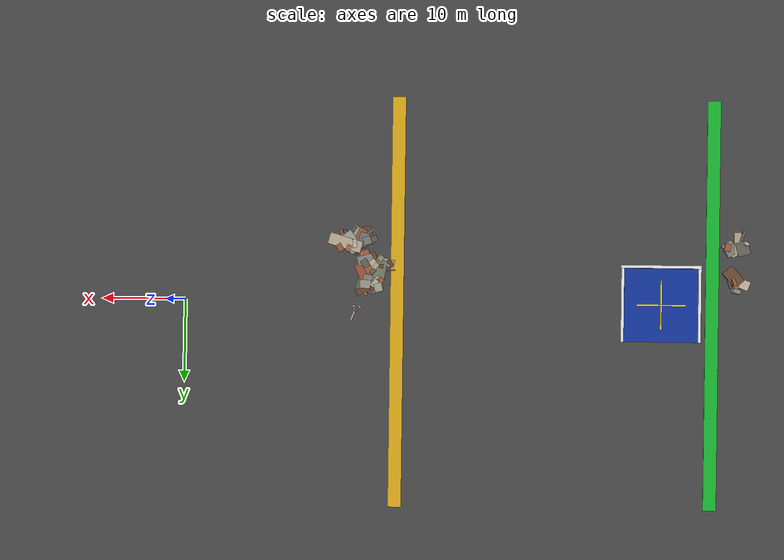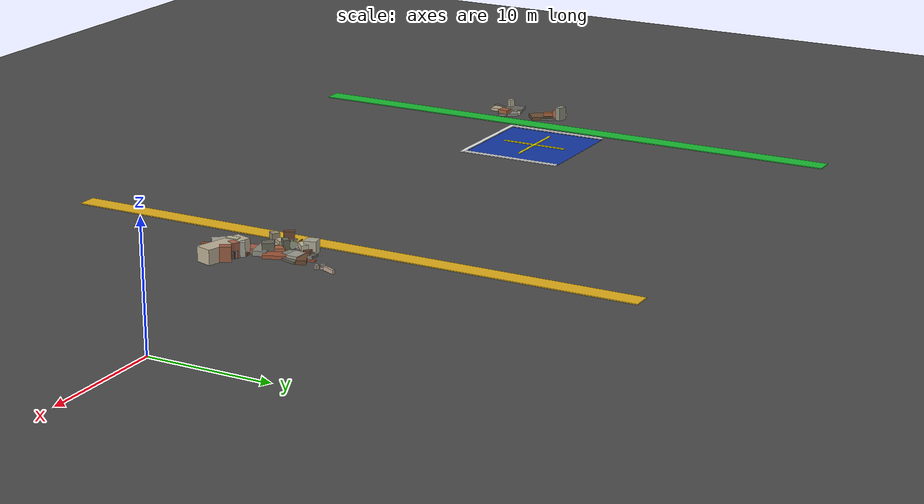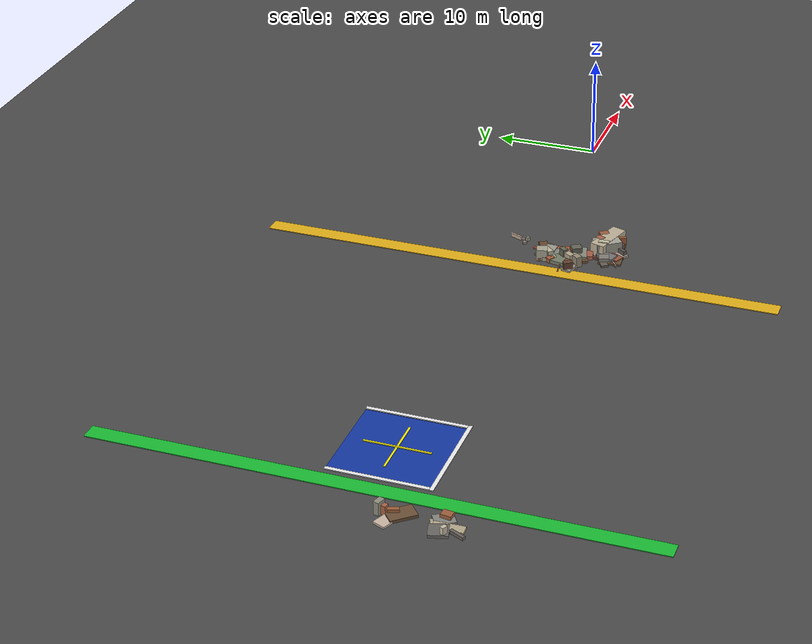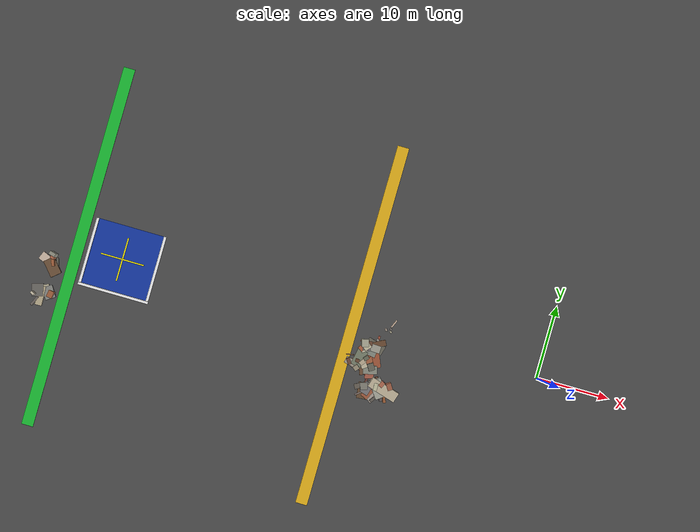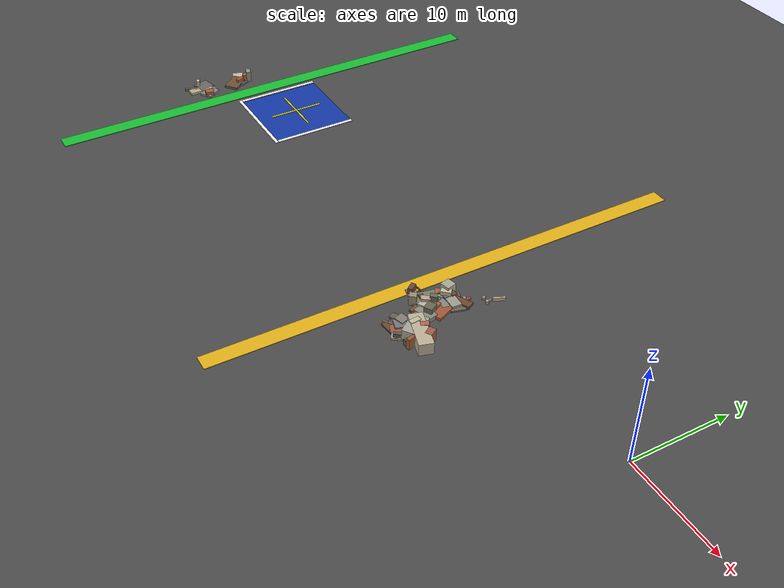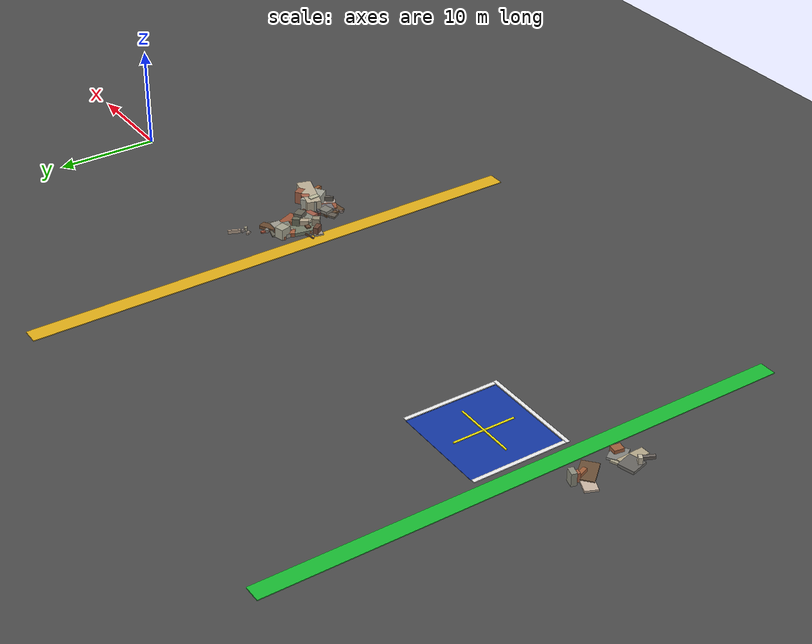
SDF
<sdf version="1.6">
 <world name="navitas_arena">
  <model name="ground_plane">
   <static>true</static>
   <link name="link">
    <collision name="collision">
     <geometry><plane><normal>0 0 1</normal><size>400 400</size></plane></geometry>
     <surface><friction><ode><mu>0.800</mu><mu2>0.800</mu2></ode></friction></surface>
    </collision>
    <visual name="visual">
     <cast_shadows>false</cast_shadows>
     <geometry><plane><normal>0 0 1</normal><size>400 400</size></plane></geometry>
     <material>
      <specular>0.04 0.04 0.04 1</specular>
      <script>
       <uri>file://media/materials/scripts/navitas_asphalt.material</uri>
       <name>Navitas/RealArenaAsphalt</name>
      </script>
     </material>
    </visual>
   </link>
  </model>
  <model name="landing">
   <static>true</static>
   <pose>-58.000 0.000 0.010 0 0 0.000</pose>
   <link name="link">
    <collision name="col"><geometry><box><size>9.000 9.000 0.020</size></box></geometry></collision>
    <visual name="vis">
     <geometry><box><size>9.000 9.000 0.020</size></box></geometry>
     <material>
      <ambient>0.08 0.22 0.65 1</ambient>
      <diffuse>0.08 0.22 0.65 1</diffuse>
      <specular>0.04 0.04 0.04 1</specular>
     </material>
    </visual>
   </link>
  </model>
  <model name="landing_border_s">
   <static>true</static>
   <pose>-58.000 -4.700 0.080 0 0 0.000</pose>
   <link name="link">
    <collision name="col"><geometry><box><size>9.800 0.350 0.080</size></box></geometry></collision>
    <visual name="vis">
     <geometry><box><size>9.800 0.350 0.080</size></box></geometry>
     <material>
      <ambient>0.95 0.95 0.95 1</ambient>
      <diffuse>0.95 0.95 0.95 1</diffuse>
      <specular>0.04 0.04 0.04 1</specular>
     </material>
    </visual>
   </link>
  </model>
  <model name="landing_border_w">
   <static>true</static>
   <pose>-62.700 0.000 0.080 0 0 0.000</pose>
   <link name="link">
    <collision name="col"><geometry><box><size>0.350 9.000 0.080</size></box></geometry></collision>
    <visual name="vis">
     <geometry><box><size>0.350 9.000 0.080</size></box></geometry>
     <material>
      <ambient>0.95 0.95 0.95 1</ambient>
      <diffuse>0.95 0.95 0.95 1</diffuse>
      <specular>0.04 0.04 0.04 1</specular>
     </material>
    </visual>
   </link>
  </model>
  <model name="landing_border_e">
   <static>true</static>
   <pose>-53.300 0.000 0.080 0 0 0.000</pose>
   <link name="link">
    <collision name="col"><geometry><box><size>0.350 9.000 0.080</size></box></geometry></collision>
    <visual name="vis">
     <geometry><box><size>0.350 9.000 0.080</size></box></geometry>
     <material>
      <ambient>0.95 0.95 0.95 1</ambient>
      <diffuse>0.95 0.95 0.95 1</diffuse>
      <specular>0.04 0.04 0.04 1</specular>
     </material>
    </visual>
   </link>
  </model>
  <model name="landing_cross_x">
   <static>true</static>
   <pose>-58.000 0.000 0.100 0 0 0.000</pose>
   <link name="link">
    <collision name="col"><geometry><box><size>6.000 0.180 0.080</size></box></geometry></collision>
    <visual name="vis">
     <geometry><box><size>6.000 0.180 0.080</size></box></geometry>
     <material>
      <ambient>1.00 0.95 0.05 1</ambient>
      <diffuse>1.00 0.95 0.05 1</diffuse>
      <specular>0.04 0.04 0.04 1</specular>
     </material>
    </visual>
   </link>
  </model>
  <model name="landing_cross_y">
   <static>true</static>
   <pose>-58.000 0.000 0.100 0 0 0.000</pose>
   <link name="link">
    <collision name="col"><geometry><box><size>0.180 6.000 0.080</size></box></geometry></collision>
    <visual name="vis">
     <geometry><box><size>0.180 6.000 0.080</size></box></geometry>
     <material>
      <ambient>1.00 0.95 0.05 1</ambient>
      <diffuse>1.00 0.95 0.05 1</diffuse>
      <specular>0.04 0.04 0.04 1</specular>
     </material>
    </visual>
   </link>
  </model>
  <model name="brd_kolay_E">
   <static>true</static>
   <pose>-64.200 0.000 0.040 0 0 0.000</pose>
   <link name="link">
    <collision name="col"><geometry><box><size>1.600 50.000 0.080</size></box></geometry></collision>
    <visual name="vis">
     <geometry><box><size>1.600 50.000 0.080</size></box></geometry>
     <material>
      <ambient>0.10 0.75 0.20 1</ambient>
      <diffuse>0.10 0.75 0.20 1</diffuse>
      <specular>0.04 0.04 0.04 1</specular>
     </material>
    </visual>
   </link>
  </model>
  <model name="deb_kolay_65">
   <static>true</static>
   <pose>-66.897 -7.898 0.000 0 0 0</pose>
   <link name="link">
    <collision name="col_0">
     <pose>-1.255 0.294 0.454 0.000 0.000 2.630</pose>
     <geometry><box><size>0.511 0.357 0.907</size></box></geometry>
    </collision>
    <visual name="vis_0">
     <pose>-1.255 0.294 0.454 0.000 0.000 2.630</pose>
     <geometry><box><size>0.511 0.357 0.907</size></box></geometry>
     <material>
      <ambient>0.74 0.69 0.61 1</ambient>
      <diffuse>0.79 0.75 0.66 1</diffuse>
      <specular>0.05 0.05 0.045 1</specular>
     </material>
    </visual>
    <collision name="col_1">
     <pose>-0.347 0.198 0.131 0.000 0.000 1.604</pose>
     <geometry><box><size>2.634 0.914 0.262</size></box></geometry>
    </collision>
    <visual name="vis_1">
     <pose>-0.347 0.198 0.131 0.000 0.000 1.604</pose>
     <geometry><box><size>2.634 0.914 0.262</size></box></geometry>
     <material>
      <ambient>0.66 0.62 0.51 1</ambient>
      <diffuse>0.72 0.67 0.55 1</diffuse>
      <specular>0.05 0.05 0.045 1</specular>
     </material>
    </visual>
    <collision name="col_2">
     <pose>-0.947 0.835 0.132 0.000 0.000 0.271</pose>
     <geometry><box><size>1.564 1.687 0.264</size></box></geometry>
    </collision>
    <visual name="vis_2">
     <pose>-0.947 0.835 0.132 0.000 0.000 0.271</pose>
     <geometry><box><size>1.564 1.687 0.264</size></box></geometry>
     <material>
      <ambient>0.39 0.38 0.36 1</ambient>
      <diffuse>0.42 0.41 0.39 1</diffuse>
      <specular>0.05 0.05 0.045 1</specular>
     </material>
    </visual>
    <collision name="col_3">
     <pose>-0.334 0.960 0.082 0.000 0.000 0.426</pose>
     <geometry><box><size>2.011 1.387 0.165</size></box></geometry>
    </collision>
    <visual name="vis_3">
     <pose>-0.334 0.960 0.082 0.000 0.000 0.426</pose>
     <geometry><box><size>2.011 1.387 0.165</size></box></geometry>
     <material>
      <ambient>0.64 0.61 0.52 1</ambient>
      <diffuse>0.69 0.66 0.56 1</diffuse>
      <specular>0.05 0.05 0.045 1</specular>
     </material>
    </visual>
    <collision name="col_4">
     <pose>0.954 0.758 0.280 0.000 0.000 1.412</pose>
     <geometry><box><size>0.930 0.757 0.559</size></box></geometry>
    </collision>
    <visual name="vis_4">
     <pose>0.954 0.758 0.280 0.000 0.000 1.412</pose>
     <geometry><box><size>0.930 0.757 0.559</size></box></geometry>
     <material>
      <ambient>0.58 0.35 0.22 1</ambient>
      <diffuse>0.63 0.38 0.24 1</diffuse>
      <specular>0.05 0.05 0.045 1</specular>
     </material>
    </visual>
    <collision name="col_5">
     <pose>-0.931 -0.699 0.141 0.000 0.000 1.140</pose>
     <geometry><box><size>1.441 0.306 0.283</size></box></geometry>
    </collision>
    <visual name="vis_5">
     <pose>-0.931 -0.699 0.141 0.000 0.000 1.140</pose>
     <geometry><box><size>1.441 0.306 0.283</size></box></geometry>
     <material>
      <ambient>0.39 0.36 0.34 1</ambient>
      <diffuse>0.42 0.39 0.37 1</diffuse>
      <specular>0.05 0.05 0.045 1</specular>
     </material>
    </visual>
    <collision name="col_6">
     <pose>0.619 0.898 0.110 0.000 0.000 0.571</pose>
     <geometry><box><size>1.415 1.731 0.220</size></box></geometry>
    </collision>
    <visual name="vis_6">
     <pose>0.619 0.898 0.110 0.000 0.000 0.571</pose>
     <geometry><box><size>1.415 1.731 0.220</size></box></geometry>
     <material>
      <ambient>0.50 0.49 0.47 1</ambient>
      <diffuse>0.53 0.53 0.51 1</diffuse>
      <specular>0.05 0.05 0.045 1</specular>
     </material>
    </visual>
   </link>
  </model>
  <model name="deb_kolay_166">
   <static>true</static>
   <pose>-66.804 -2.737 0.000 0 0 0</pose>
   <link name="link">
    <collision name="col_0">
     <pose>-0.789 -0.113 0.093 0.000 0.000 -0.395</pose>
     <geometry><box><size>2.324 1.177 0.186</size></box></geometry>
    </collision>
    <visual name="vis_0">
     <pose>-0.789 -0.113 0.093 0.000 0.000 -0.395</pose>
     <geometry><box><size>2.324 1.177 0.186</size></box></geometry>
     <material>
      <ambient>0.75 0.68 0.61 1</ambient>
      <diffuse>0.81 0.73 0.66 1</diffuse>
      <specular>0.05 0.05 0.045 1</specular>
     </material>
    </visual>
    <collision name="col_1">
     <pose>0.559 -0.055 0.092 0.000 0.000 1.909</pose>
     <geometry><box><size>1.334 0.253 0.185</size></box></geometry>
    </collision>
    <visual name="vis_1">
     <pose>0.559 -0.055 0.092 0.000 0.000 1.909</pose>
     <geometry><box><size>1.334 0.253 0.185</size></box></geometry>
     <material>
      <ambient>0.37 0.37 0.32 1</ambient>
      <diffuse>0.40 0.39 0.35 1</diffuse>
      <specular>0.05 0.05 0.045 1</specular>
     </material>
    </visual>
    <collision name="col_2">
     <pose>0.062 -0.829 0.144 0.000 0.000 2.281</pose>
     <geometry><box><size>2.387 1.535 0.288</size></box></geometry>
    </collision>
    <visual name="vis_2">
     <pose>0.062 -0.829 0.144 0.000 0.000 2.281</pose>
     <geometry><box><size>2.387 1.535 0.288</size></box></geometry>
     <material>
      <ambient>0.39 0.29 0.20 1</ambient>
      <diffuse>0.43 0.32 0.22 1</diffuse>
      <specular>0.05 0.05 0.045 1</specular>
     </material>
    </visual>
    <collision name="col_3">
     <pose>0.037 -0.205 0.297 0.000 0.000 1.937</pose>
     <geometry><box><size>0.986 0.391 0.595</size></box></geometry>
    </collision>
    <visual name="vis_3">
     <pose>0.037 -0.205 0.297 0.000 0.000 1.937</pose>
     <geometry><box><size>0.986 0.391 0.595</size></box></geometry>
     <material>
      <ambient>0.59 0.35 0.21 1</ambient>
      <diffuse>0.64 0.38 0.23 1</diffuse>
      <specular>0.05 0.05 0.045 1</specular>
     </material>
    </visual>
    <collision name="col_4">
     <pose>-0.131 0.915 0.604 0.000 0.000 -0.285</pose>
     <geometry><box><size>0.848 0.512 1.208</size></box></geometry>
    </collision>
    <visual name="vis_4">
     <pose>-0.131 0.915 0.604 0.000 0.000 -0.285</pose>
     <geometry><box><size>0.848 0.512 1.208</size></box></geometry>
     <material>
      <ambient>0.52 0.53 0.48 1</ambient>
      <diffuse>0.57 0.57 0.51 1</diffuse>
      <specular>0.05 0.05 0.045 1</specular>
     </material>
    </visual>
    <collision name="col_5">
     <pose>-0.113 0.474 0.435 0.000 0.000 -0.228</pose>
     <geometry><box><size>0.506 0.470 0.870</size></box></geometry>
    </collision>
    <visual name="vis_5">
     <pose>-0.113 0.474 0.435 0.000 0.000 -0.228</pose>
     <geometry><box><size>0.506 0.470 0.870</size></box></geometry>
     <material>
      <ambient>0.62 0.37 0.25 1</ambient>
      <diffuse>0.67 0.40 0.28 1</diffuse>
      <specular>0.05 0.05 0.045 1</specular>
     </material>
    </visual>
   </link>
  </model>
  <model name="brd_orta_W">
   <static>true</static>
   <pose>-25.800 0.000 0.040 0 0 0.000</pose>
   <link name="link">
    <collision name="col"><geometry><box><size>1.600 50.000 0.080</size></box></geometry></collision>
    <visual name="vis">
     <geometry><box><size>1.600 50.000 0.080</size></box></geometry>
     <material>
      <ambient>0.90 0.70 0.10 1</ambient>
      <diffuse>0.90 0.70 0.10 1</diffuse>
      <specular>0.04 0.04 0.04 1</specular>
     </material>
    </visual>
   </link>
  </model>
  <model name="blk_orta_1_0_6">
   <static>true</static>
   <pose>-19.627 -7.184 0.000 0 0 0</pose>
   <link name="link">
    <collision name="col_0">
     <pose>0.778 0.699 0.619 0.000 0.000 0.554</pose>
     <geometry><box><size>0.674 0.909 1.238</size></box></geometry>
    </collision>
    <visual name="vis_0">
     <pose>0.778 0.699 0.619 0.000 0.000 0.554</pose>
     <geometry><box><size>0.674 0.909 1.238</size></box></geometry>
     <material>
      <ambient>0.58 0.35 0.25 1</ambient>
      <diffuse>0.62 0.37 0.27 1</diffuse>
      <specular>0.05 0.05 0.045 1</specular>
     </material>
    </visual>
    <collision name="col_1">
     <pose>0.117 0.105 0.617 0.000 0.000 -0.291</pose>
     <geometry><box><size>4.038 1.399 1.235</size></box></geometry>
    </collision>
    <visual name="vis_1">
     <pose>0.117 0.105 0.617 0.000 0.000 -0.291</pose>
     <geometry><box><size>4.038 1.399 1.235</size></box></geometry>
     <material>
      <ambient>0.69 0.65 0.56 1</ambient>
      <diffuse>0.75 0.70 0.60 1</diffuse>
      <specular>0.05 0.05 0.045 1</specular>
     </material>
    </visual>
    <collision name="col_2">
     <pose>0.051 -0.242 0.305 0.000 0.000 1.693</pose>
     <geometry><box><size>2.580 0.393 0.609</size></box></geometry>
    </collision>
    <visual name="vis_2">
     <pose>0.051 -0.242 0.305 0.000 0.000 1.693</pose>
     <geometry><box><size>2.580 0.393 0.609</size></box></geometry>
     <material>
      <ambient>0.33 0.30 0.31 1</ambient>
      <diffuse>0.36 0.33 0.33 1</diffuse>
      <specular>0.05 0.05 0.045 1</specular>
     </material>
    </visual>
    <collision name="col_3">
     <pose>-1.012 0.204 0.651 0.000 0.000 1.642</pose>
     <geometry><box><size>1.029 0.505 1.302</size></box></geometry>
    </collision>
    <visual name="vis_3">
     <pose>-1.012 0.204 0.651 0.000 0.000 1.642</pose>
     <geometry><box><size>1.029 0.505 1.302</size></box></geometry>
     <material>
      <ambient>0.71 0.69 0.58 1</ambient>
      <diffuse>0.76 0.75 0.63 1</diffuse>
      <specular>0.05 0.05 0.045 1</specular>
     </material>
    </visual>
    <collision name="col_4">
     <pose>-0.202 0.891 0.320 0.000 0.000 1.883</pose>
     <geometry><box><size>0.494 0.342 0.640</size></box></geometry>
    </collision>
    <visual name="vis_4">
     <pose>-0.202 0.891 0.320 0.000 0.000 1.883</pose>
     <geometry><box><size>0.494 0.342 0.640</size></box></geometry>
     <material>
      <ambient>0.54 0.50 0.50 1</ambient>
      <diffuse>0.58 0.53 0.54 1</diffuse>
      <specular>0.05 0.05 0.045 1</specular>
     </material>
    </visual>
    <collision name="col_5">
     <pose>0.322 -0.431 0.565 0.000 0.000 1.913</pose>
     <geometry><box><size>2.310 0.367 1.130</size></box></geometry>
    </collision>
    <visual name="vis_5">
     <pose>0.322 -0.431 0.565 0.000 0.000 1.913</pose>
     <geometry><box><size>2.310 0.367 1.130</size></box></geometry>
     <material>
      <ambient>0.56 0.33 0.19 1</ambient>
      <diffuse>0.60 0.36 0.20 1</diffuse>
      <specular>0.05 0.05 0.045 1</specular>
     </material>
    </visual>
    <collision name="col_6">
     <pose>-0.591 0.027 0.606 0.000 0.000 2.203</pose>
     <geometry><box><size>2.494 1.621 1.212</size></box></geometry>
    </collision>
    <visual name="vis_6">
     <pose>-0.591 0.027 0.606 0.000 0.000 2.203</pose>
     <geometry><box><size>2.494 1.621 1.212</size></box></geometry>
     <material>
      <ambient>0.60 0.60 0.55 1</ambient>
      <diffuse>0.65 0.65 0.60 1</diffuse>
      <specular>0.05 0.05 0.045 1</specular>
     </material>
    </visual>
    <collision name="col_7">
     <pose>-0.334 -0.810 0.317 0.000 0.000 0.955</pose>
     <geometry><box><size>2.698 0.327 0.633</size></box></geometry>
    </collision>
    <visual name="vis_7">
     <pose>-0.334 -0.810 0.317 0.000 0.000 0.955</pose>
     <geometry><box><size>2.698 0.327 0.633</size></box></geometry>
     <material>
      <ambient>0.35 0.34 0.31 1</ambient>
      <diffuse>0.38 0.36 0.33 1</diffuse>
      <specular>0.05 0.05 0.045 1</specular>
     </material>
    </visual>
    <collision name="col_8">
     <pose>-0.285 0.749 0.627 0.000 0.000 -0.409</pose>
     <geometry><box><size>0.562 0.778 1.254</size></box></geometry>
    </collision>
    <visual name="vis_8">
     <pose>-0.285 0.749 0.627 0.000 0.000 -0.409</pose>
     <geometry><box><size>0.562 0.778 1.254</size></box></geometry>
     <material>
      <ambient>0.63 0.38 0.29 1</ambient>
      <diffuse>0.68 0.41 0.31 1</diffuse>
      <specular>0.05 0.05 0.045 1</specular>
     </material>
    </visual>
    <collision name="col_9">
     <pose>0.613 0.421 0.308 0.000 0.000 1.257</pose>
     <geometry><box><size>0.283 0.357 0.616</size></box></geometry>
    </collision>
    <visual name="vis_9">
     <pose>0.613 0.421 0.308 0.000 0.000 1.257</pose>
     <geometry><box><size>0.283 0.357 0.616</size></box></geometry>
     <material>
      <ambient>0.43 0.31 0.23 1</ambient>
      <diffuse>0.47 0.33 0.25 1</diffuse>
      <specular>0.05 0.05 0.045 1</specular>
     </material>
    </visual>
   </link>
  </model>
  <model name="deb_orta_2">
   <static>true</static>
   <pose>-22.332 -3.855 0.000 0 0 0</pose>
   <link name="link">
    <collision name="col_0">
     <pose>0.426 -0.768 0.476 0.000 0.000 3.694</pose>
     <geometry><box><size>0.840 0.980 0.953</size></box></geometry>
    </collision>
    <visual name="vis_0">
     <pose>0.426 -0.768 0.476 0.000 0.000 3.694</pose>
     <geometry><box><size>0.840 0.980 0.953</size></box></geometry>
     <material>
      <ambient>0.38 0.37 0.33 1</ambient>
      <diffuse>0.41 0.40 0.35 1</diffuse>
      <specular>0.05 0.05 0.045 1</specular>
     </material>
    </visual>
    <collision name="col_1">
     <pose>-0.139 -0.080 0.247 0.000 0.000 3.620</pose>
     <geometry><box><size>1.128 0.881 0.493</size></box></geometry>
    </collision>
    <visual name="vis_1">
     <pose>-0.139 -0.080 0.247 0.000 0.000 3.620</pose>
     <geometry><box><size>1.128 0.881 0.493</size></box></geometry>
     <material>
      <ambient>0.60 0.36 0.24 1</ambient>
      <diffuse>0.65 0.39 0.26 1</diffuse>
      <specular>0.05 0.05 0.045 1</specular>
     </material>
    </visual>
    <collision name="col_2">
     <pose>0.154 0.640 0.112 0.000 0.000 2.163</pose>
     <geometry><box><size>1.251 0.248 0.223</size></box></geometry>
    </collision>
    <visual name="vis_2">
     <pose>0.154 0.640 0.112 0.000 0.000 2.163</pose>
     <geometry><box><size>1.251 0.248 0.223</size></box></geometry>
     <material>
      <ambient>0.57 0.35 0.24 1</ambient>
      <diffuse>0.62 0.38 0.25 1</diffuse>
      <specular>0.05 0.05 0.045 1</specular>
     </material>
    </visual>
    <collision name="col_3">
     <pose>-0.938 0.384 0.110 0.000 0.000 2.950</pose>
     <geometry><box><size>2.050 0.313 0.220</size></box></geometry>
    </collision>
    <visual name="vis_3">
     <pose>-0.938 0.384 0.110 0.000 0.000 2.950</pose>
     <geometry><box><size>2.050 0.313 0.220</size></box></geometry>
     <material>
      <ambient>0.32 0.31 0.31 1</ambient>
      <diffuse>0.35 0.34 0.34 1</diffuse>
      <specular>0.05 0.05 0.045 1</specular>
     </material>
    </visual>
    <collision name="col_4">
     <pose>-0.014 -0.521 0.088 0.000 0.000 2.397</pose>
     <geometry><box><size>1.175 0.158 0.175</size></box></geometry>
    </collision>
    <visual name="vis_4">
     <pose>-0.014 -0.521 0.088 0.000 0.000 2.397</pose>
     <geometry><box><size>1.175 0.158 0.175</size></box></geometry>
     <material>
      <ambient>0.74 0.68 0.63 1</ambient>
      <diffuse>0.80 0.73 0.68 1</diffuse>
      <specular>0.05 0.05 0.045 1</specular>
     </material>
    </visual>
    <collision name="col_5">
     <pose>-0.238 0.513 0.108 0.000 0.000 1.562</pose>
     <geometry><box><size>0.385 0.167 0.215</size></box></geometry>
    </collision>
    <visual name="vis_5">
     <pose>-0.238 0.513 0.108 0.000 0.000 1.562</pose>
     <geometry><box><size>0.385 0.167 0.215</size></box></geometry>
     <material>
      <ambient>0.39 0.25 0.17 1</ambient>
      <diffuse>0.42 0.27 0.19 1</diffuse>
      <specular>0.05 0.05 0.045 1</specular>
     </material>
    </visual>
   </link>
  </model>
  <model name="deb_orta_5">
   <static>true</static>
   <pose>-22.063 -4.601 0.000 0 0 0</pose>
   <link name="link">
    <collision name="col_0">
     <pose>0.251 0.930 0.141 0.000 0.000 1.968</pose>
     <geometry><box><size>2.232 1.756 0.282</size></box></geometry>
    </collision>
    <visual name="vis_0">
     <pose>0.251 0.930 0.141 0.000 0.000 1.968</pose>
     <geometry><box><size>2.232 1.756 0.282</size></box></geometry>
     <material>
      <ambient>0.58 0.32 0.20 1</ambient>
      <diffuse>0.63 0.34 0.22 1</diffuse>
      <specular>0.05 0.05 0.045 1</specular>
     </material>
    </visual>
    <collision name="col_1">
     <pose>-0.781 -0.323 0.106 0.000 0.000 1.960</pose>
     <geometry><box><size>2.084 1.257 0.212</size></box></geometry>
    </collision>
    <visual name="vis_1">
     <pose>-0.781 -0.323 0.106 0.000 0.000 1.960</pose>
     <geometry><box><size>2.084 1.257 0.212</size></box></geometry>
     <material>
      <ambient>0.40 0.28 0.19 1</ambient>
      <diffuse>0.44 0.31 0.21 1</diffuse>
      <specular>0.05 0.05 0.045 1</specular>
     </material>
    </visual>
    <collision name="col_2">
     <pose>0.162 -0.827 0.193 0.000 0.000 1.808</pose>
     <geometry><box><size>1.656 1.187 0.386</size></box></geometry>
    </collision>
    <visual name="vis_2">
     <pose>0.162 -0.827 0.193 0.000 0.000 1.808</pose>
     <geometry><box><size>1.656 1.187 0.386</size></box></geometry>
     <material>
      <ambient>0.61 0.35 0.27 1</ambient>
      <diffuse>0.66 0.37 0.29 1</diffuse>
      <specular>0.05 0.05 0.045 1</specular>
     </material>
    </visual>
    <collision name="col_3">
     <pose>0.890 -0.330 0.114 0.000 0.000 1.757</pose>
     <geometry><box><size>0.205 0.226 0.229</size></box></geometry>
    </collision>
    <visual name="vis_3">
     <pose>0.890 -0.330 0.114 0.000 0.000 1.757</pose>
     <geometry><box><size>0.205 0.226 0.229</size></box></geometry>
     <material>
      <ambient>0.43 0.28 0.23 1</ambient>
      <diffuse>0.46 0.31 0.25 1</diffuse>
      <specular>0.05 0.05 0.045 1</specular>
     </material>
    </visual>
    <collision name="col_4">
     <pose>0.166 -0.488 0.207 0.000 0.000 0.245</pose>
     <geometry><box><size>1.905 1.115 0.413</size></box></geometry>
    </collision>
    <visual name="vis_4">
     <pose>0.166 -0.488 0.207 0.000 0.000 0.245</pose>
     <geometry><box><size>1.905 1.115 0.413</size></box></geometry>
     <material>
      <ambient>0.50 0.51 0.47 1</ambient>
      <diffuse>0.54 0.55 0.50 1</diffuse>
      <specular>0.05 0.05 0.045 1</specular>
     </material>
    </visual>
    <collision name="col_5">
     <pose>-0.444 0.008 0.183 0.000 0.000 0.456</pose>
     <geometry><box><size>1.737 0.164 0.366</size></box></geometry>
    </collision>
    <visual name="vis_5">
     <pose>-0.444 0.008 0.183 0.000 0.000 0.456</pose>
     <geometry><box><size>1.737 0.164 0.366</size></box></geometry>
     <material>
      <ambient>0.43 0.41 0.40 1</ambient>
      <diffuse>0.46 0.44 0.44 1</diffuse>
      <specular>0.05 0.05 0.045 1</specular>
     </material>
    </visual>
   </link>
  </model>
  <model name="deb_orta_88">
   <static>true</static>
   <pose>-23.936 -4.870 0.000 0 0 0</pose>
   <link name="link">
    <collision name="col_0">
     <pose>-0.362 -0.249 0.098 0.000 0.000 1.934</pose>
     <geometry><box><size>0.513 0.473 0.195</size></box></geometry>
    </collision>
    <visual name="vis_0">
     <pose>-0.362 -0.249 0.098 0.000 0.000 1.934</pose>
     <geometry><box><size>0.513 0.473 0.195</size></box></geometry>
     <material>
      <ambient>0.56 0.52 0.49 1</ambient>
      <diffuse>0.60 0.56 0.52 1</diffuse>
      <specular>0.05 0.05 0.045 1</specular>
     </material>
    </visual>
    <collision name="col_1">
     <pose>0.127 -0.391 0.531 0.000 0.000 2.462</pose>
     <geometry><box><size>0.641 0.708 1.062</size></box></geometry>
    </collision>
    <visual name="vis_1">
     <pose>0.127 -0.391 0.531 0.000 0.000 2.462</pose>
     <geometry><box><size>0.641 0.708 1.062</size></box></geometry>
     <material>
      <ambient>0.55 0.52 0.44 1</ambient>
      <diffuse>0.60 0.56 0.47 1</diffuse>
      <specular>0.05 0.05 0.045 1</specular>
     </material>
    </visual>
    <collision name="col_2">
     <pose>0.035 0.978 0.125 0.000 0.000 0.701</pose>
     <geometry><box><size>2.336 0.301 0.249</size></box></geometry>
    </collision>
    <visual name="vis_2">
     <pose>0.035 0.978 0.125 0.000 0.000 0.701</pose>
     <geometry><box><size>2.336 0.301 0.249</size></box></geometry>
     <material>
      <ambient>0.59 0.38 0.24 1</ambient>
      <diffuse>0.64 0.42 0.26 1</diffuse>
      <specular>0.05 0.05 0.045 1</specular>
     </material>
    </visual>
    <collision name="col_3">
     <pose>-0.485 0.051 0.126 0.000 0.000 2.914</pose>
     <geometry><box><size>2.066 0.934 0.251</size></box></geometry>
    </collision>
    <visual name="vis_3">
     <pose>-0.485 0.051 0.126 0.000 0.000 2.914</pose>
     <geometry><box><size>2.066 0.934 0.251</size></box></geometry>
     <material>
      <ambient>0.60 0.56 0.51 1</ambient>
      <diffuse>0.65 0.61 0.55 1</diffuse>
      <specular>0.05 0.05 0.045 1</specular>
     </material>
    </visual>
    <collision name="col_4">
     <pose>1.026 0.222 0.261 0.000 0.000 0.629</pose>
     <geometry><box><size>0.840 0.901 0.522</size></box></geometry>
    </collision>
    <visual name="vis_4">
     <pose>1.026 0.222 0.261 0.000 0.000 0.629</pose>
     <geometry><box><size>0.840 0.901 0.522</size></box></geometry>
     <material>
      <ambient>0.70 0.67 0.58 1</ambient>
      <diffuse>0.76 0.72 0.62 1</diffuse>
      <specular>0.05 0.05 0.045 1</specular>
     </material>
    </visual>
    <collision name="col_5">
     <pose>-1.038 0.184 0.463 0.000 0.000 2.167</pose>
     <geometry><box><size>0.869 0.469 0.927</size></box></geometry>
    </collision>
    <visual name="vis_5">
     <pose>-1.038 0.184 0.463 0.000 0.000 2.167</pose>
     <geometry><box><size>0.869 0.469 0.927</size></box></geometry>
     <material>
      <ambient>0.40 0.26 0.19 1</ambient>
      <diffuse>0.43 0.28 0.21 1</diffuse>
      <specular>0.05 0.05 0.045 1</specular>
     </material>
    </visual>
   </link>
  </model>
  <model name="deb_orta_102">
   <static>true</static>
   <pose>-21.438 -8.036 0.000 0 0 0</pose>
   <link name="link">
    <collision name="col_0">
     <pose>0.127 -0.009 0.123 0.000 0.000 1.115</pose>
     <geometry><box><size>1.815 1.019 0.247</size></box></geometry>
    </collision>
    <visual name="vis_0">
     <pose>0.127 -0.009 0.123 0.000 0.000 1.115</pose>
     <geometry><box><size>1.815 1.019 0.247</size></box></geometry>
     <material>
      <ambient>0.58 0.34 0.23 1</ambient>
      <diffuse>0.63 0.36 0.25 1</diffuse>
      <specular>0.05 0.05 0.045 1</specular>
     </material>
    </visual>
    <collision name="col_1">
     <pose>-0.553 0.022 0.090 0.000 0.000 1.671</pose>
     <geometry><box><size>2.187 1.527 0.180</size></box></geometry>
    </collision>
    <visual name="vis_1">
     <pose>-0.553 0.022 0.090 0.000 0.000 1.671</pose>
     <geometry><box><size>2.187 1.527 0.180</size></box></geometry>
     <material>
      <ambient>0.38 0.28 0.19 1</ambient>
      <diffuse>0.41 0.30 0.20 1</diffuse>
      <specular>0.05 0.05 0.045 1</specular>
     </material>
    </visual>
    <collision name="col_2">
     <pose>-0.388 -0.091 0.142 0.000 0.000 3.197</pose>
     <geometry><box><size>0.340 0.410 0.284</size></box></geometry>
    </collision>
    <visual name="vis_2">
     <pose>-0.388 -0.091 0.142 0.000 0.000 3.197</pose>
     <geometry><box><size>0.340 0.410 0.284</size></box></geometry>
     <material>
      <ambient>0.51 0.52 0.45 1</ambient>
      <diffuse>0.55 0.56 0.49 1</diffuse>
      <specular>0.05 0.05 0.045 1</specular>
     </material>
    </visual>
    <collision name="col_3">
     <pose>-0.566 -0.109 0.096 0.000 0.000 0.644</pose>
     <geometry><box><size>2.359 0.170 0.192</size></box></geometry>
    </collision>
    <visual name="vis_3">
     <pose>-0.566 -0.109 0.096 0.000 0.000 0.644</pose>
     <geometry><box><size>2.359 0.170 0.192</size></box></geometry>
     <material>
      <ambient>0.51 0.46 0.44 1</ambient>
      <diffuse>0.55 0.49 0.47 1</diffuse>
      <specular>0.05 0.05 0.045 1</specular>
     </material>
    </visual>
    <collision name="col_4">
     <pose>-0.207 0.469 0.207 0.000 0.000 1.280</pose>
     <geometry><box><size>1.658 1.114 0.413</size></box></geometry>
    </collision>
    <visual name="vis_4">
     <pose>-0.207 0.469 0.207 0.000 0.000 1.280</pose>
     <geometry><box><size>1.658 1.114 0.413</size></box></geometry>
     <material>
      <ambient>0.44 0.43 0.44 1</ambient>
      <diffuse>0.47 0.46 0.47 1</diffuse>
      <specular>0.05 0.05 0.045 1</specular>
     </material>
    </visual>
    <collision name="col_5">
     <pose>0.459 -0.202 0.104 0.000 0.000 2.515</pose>
     <geometry><box><size>1.929 1.490 0.208</size></box></geometry>
    </collision>
    <visual name="vis_5">
     <pose>0.459 -0.202 0.104 0.000 0.000 2.515</pose>
     <geometry><box><size>1.929 1.490 0.208</size></box></geometry>
     <material>
      <ambient>0.61 0.57 0.53 1</ambient>
      <diffuse>0.66 0.61 0.57 1</diffuse>
      <specular>0.05 0.05 0.045 1</specular>
     </material>
    </visual>
   </link>
  </model>
  <model name="deb_orta_117">
   <static>true</static>
   <pose>-23.383 -2.105 0.000 0 0 0</pose>
   <link name="link">
    <collision name="col_0">
     <pose>-0.156 0.381 0.552 0.000 0.000 1.822</pose>
     <geometry><box><size>1.021 0.986 1.103</size></box></geometry>
    </collision>
    <visual name="vis_0">
     <pose>-0.156 0.381 0.552 0.000 0.000 1.822</pose>
     <geometry><box><size>1.021 0.986 1.103</size></box></geometry>
     <material>
      <ambient>0.62 0.61 0.53 1</ambient>
      <diffuse>0.67 0.66 0.58 1</diffuse>
      <specular>0.05 0.05 0.045 1</specular>
     </material>
    </visual>
    <collision name="col_1">
     <pose>-0.345 0.000 0.154 0.000 0.000 1.866</pose>
     <geometry><box><size>0.432 0.359 0.309</size></box></geometry>
    </collision>
    <visual name="vis_1">
     <pose>-0.345 0.000 0.154 0.000 0.000 1.866</pose>
     <geometry><box><size>0.432 0.359 0.309</size></box></geometry>
     <material>
      <ambient>0.60 0.34 0.25 1</ambient>
      <diffuse>0.65 0.36 0.27 1</diffuse>
      <specular>0.05 0.05 0.045 1</specular>
     </material>
    </visual>
    <collision name="col_2">
     <pose>-0.003 0.090 0.138 0.000 0.000 -0.507</pose>
     <geometry><box><size>1.724 0.199 0.276</size></box></geometry>
    </collision>
    <visual name="vis_2">
     <pose>-0.003 0.090 0.138 0.000 0.000 -0.507</pose>
     <geometry><box><size>1.724 0.199 0.276</size></box></geometry>
     <material>
      <ambient>0.61 0.37 0.26 1</ambient>
      <diffuse>0.66 0.40 0.28 1</diffuse>
      <specular>0.05 0.05 0.045 1</specular>
     </material>
    </visual>
    <collision name="col_3">
     <pose>-0.380 -0.466 0.217 0.000 0.000 1.000</pose>
     <geometry><box><size>0.683 0.728 0.433</size></box></geometry>
    </collision>
    <visual name="vis_3">
     <pose>-0.380 -0.466 0.217 0.000 0.000 1.000</pose>
     <geometry><box><size>0.683 0.728 0.433</size></box></geometry>
     <material>
      <ambient>0.62 0.36 0.23 1</ambient>
      <diffuse>0.67 0.38 0.25 1</diffuse>
      <specular>0.05 0.05 0.045 1</specular>
     </material>
    </visual>
    <collision name="col_4">
     <pose>-0.026 0.398 0.065 0.000 0.000 -0.118</pose>
     <geometry><box><size>0.478 0.377 0.129</size></box></geometry>
    </collision>
    <visual name="vis_4">
     <pose>-0.026 0.398 0.065 0.000 0.000 -0.118</pose>
     <geometry><box><size>0.478 0.377 0.129</size></box></geometry>
     <material>
      <ambient>0.58 0.31 0.24 1</ambient>
      <diffuse>0.62 0.33 0.25 1</diffuse>
      <specular>0.05 0.05 0.045 1</specular>
     </material>
    </visual>
    <collision name="col_5">
     <pose>0.435 0.453 0.246 0.000 0.000 1.729</pose>
     <geometry><box><size>0.556 0.819 0.492</size></box></geometry>
    </collision>
    <visual name="vis_5">
     <pose>0.435 0.453 0.246 0.000 0.000 1.729</pose>
     <geometry><box><size>0.556 0.819 0.492</size></box></geometry>
     <material>
      <ambient>0.40 0.27 0.19 1</ambient>
      <diffuse>0.43 0.29 0.21 1</diffuse>
      <specular>0.05 0.05 0.045 1</specular>
     </material>
    </visual>
    <collision name="col_6">
     <pose>-0.015 0.272 0.147 0.000 0.000 1.119</pose>
     <geometry><box><size>1.339 0.130 0.294</size></box></geometry>
    </collision>
    <visual name="vis_6">
     <pose>-0.015 0.272 0.147 0.000 0.000 1.119</pose>
     <geometry><box><size>1.339 0.130 0.294</size></box></geometry>
     <material>
      <ambient>0.50 0.50 0.48 1</ambient>
      <diffuse>0.54 0.54 0.51 1</diffuse>
      <specular>0.05 0.05 0.045 1</specular>
     </material>
    </visual>
   </link>
  </model>
  <model name="deb_orta_133">
   <static>true</static>
   <pose>-22.260 -1.317 0.000 0 0 0</pose>
   <link name="link">
    <collision name="col_0">
     <pose>-0.160 -0.104 0.154 0.000 0.000 -0.078</pose>
     <geometry><box><size>0.357 0.213 0.309</size></box></geometry>
    </collision>
    <visual name="vis_0">
     <pose>-0.160 -0.104 0.154 0.000 0.000 -0.078</pose>
     <geometry><box><size>0.357 0.213 0.309</size></box></geometry>
     <material>
      <ambient>0.56 0.56 0.51 1</ambient>
      <diffuse>0.61 0.61 0.55 1</diffuse>
      <specular>0.05 0.05 0.045 1</specular>
     </material>
    </visual>
    <collision name="col_1">
     <pose>0.279 0.369 0.149 0.000 0.000 0.545</pose>
     <geometry><box><size>0.300 0.367 0.298</size></box></geometry>
    </collision>
    <visual name="vis_1">
     <pose>0.279 0.369 0.149 0.000 0.000 0.545</pose>
     <geometry><box><size>0.300 0.367 0.298</size></box></geometry>
     <material>
      <ambient>0.53 0.53 0.50 1</ambient>
      <diffuse>0.58 0.57 0.54 1</diffuse>
      <specular>0.05 0.05 0.045 1</specular>
     </material>
    </visual>
    <collision name="col_2">
     <pose>0.137 -0.312 0.111 0.000 0.000 0.464</pose>
     <geometry><box><size>2.102 0.193 0.223</size></box></geometry>
    </collision>
    <visual name="vis_2">
     <pose>0.137 -0.312 0.111 0.000 0.000 0.464</pose>
     <geometry><box><size>2.102 0.193 0.223</size></box></geometry>
     <material>
      <ambient>0.64 0.40 0.26 1</ambient>
      <diffuse>0.69 0.43 0.28 1</diffuse>
      <specular>0.05 0.05 0.045 1</specular>
     </material>
    </visual>
    <collision name="col_3">
     <pose>-0.259 -0.277 0.074 0.000 0.000 0.589</pose>
     <geometry><box><size>1.616 0.229 0.148</size></box></geometry>
    </collision>
    <visual name="vis_3">
     <pose>-0.259 -0.277 0.074 0.000 0.000 0.589</pose>
     <geometry><box><size>1.616 0.229 0.148</size></box></geometry>
     <material>
      <ambient>0.63 0.37 0.30 1</ambient>
      <diffuse>0.68 0.40 0.32 1</diffuse>
      <specular>0.05 0.05 0.045 1</specular>
     </material>
    </visual>
    <collision name="col_4">
     <pose>0.065 -0.136 0.144 0.000 0.000 0.656</pose>
     <geometry><box><size>0.407 0.196 0.287</size></box></geometry>
    </collision>
    <visual name="vis_4">
     <pose>0.065 -0.136 0.144 0.000 0.000 0.656</pose>
     <geometry><box><size>0.407 0.196 0.287</size></box></geometry>
     <material>
      <ambient>0.52 0.48 0.44 1</ambient>
      <diffuse>0.56 0.52 0.47 1</diffuse>
      <specular>0.05 0.05 0.045 1</specular>
     </material>
    </visual>
    <collision name="col_5">
     <pose>0.335 0.032 0.074 0.000 0.000 1.508</pose>
     <geometry><box><size>1.856 0.272 0.148</size></box></geometry>
    </collision>
    <visual name="vis_5">
     <pose>0.335 0.032 0.074 0.000 0.000 1.508</pose>
     <geometry><box><size>1.856 0.272 0.148</size></box></geometry>
     <material>
      <ambient>0.61 0.31 0.23 1</ambient>
      <diffuse>0.66 0.33 0.24 1</diffuse>
      <specular>0.05 0.05 0.045 1</specular>
     </material>
    </visual>
    <collision name="col_6">
     <pose>0.104 -0.344 0.160 0.000 0.000 0.473</pose>
     <geometry><box><size>2.977 0.796 0.321</size></box></geometry>
    </collision>
    <visual name="vis_6">
     <pose>0.104 -0.344 0.160 0.000 0.000 0.473</pose>
     <geometry><box><size>2.977 0.796 0.321</size></box></geometry>
     <material>
      <ambient>0.39 0.27 0.18 1</ambient>
      <diffuse>0.42 0.29 0.19 1</diffuse>
      <specular>0.05 0.05 0.045 1</specular>
     </material>
    </visual>
   </link>
  </model>
  <model name="deb_orta_209">
   <static>true</static>
   <pose>-23.595 -4.127 0.000 0 0 0</pose>
   <link name="link">
    <collision name="col_0">
     <pose>-0.881 0.389 0.087 0.000 0.000 0.140</pose>
     <geometry><box><size>2.240 0.120 0.173</size></box></geometry>
    </collision>
    <visual name="vis_0">
     <pose>-0.881 0.389 0.087 0.000 0.000 0.140</pose>
     <geometry><box><size>2.240 0.120 0.173</size></box></geometry>
     <material>
      <ambient>0.42 0.31 0.23 1</ambient>
      <diffuse>0.45 0.33 0.25 1</diffuse>
      <specular>0.05 0.05 0.045 1</specular>
     </material>
    </visual>
    <collision name="col_1">
     <pose>0.756 0.476 0.527 0.000 0.000 0.834</pose>
     <geometry><box><size>0.713 0.513 1.053</size></box></geometry>
    </collision>
    <visual name="vis_1">
     <pose>0.756 0.476 0.527 0.000 0.000 0.834</pose>
     <geometry><box><size>0.713 0.513 1.053</size></box></geometry>
     <material>
      <ambient>0.38 0.39 0.33 1</ambient>
      <diffuse>0.41 0.42 0.35 1</diffuse>
      <specular>0.05 0.05 0.045 1</specular>
     </material>
    </visual>
    <collision name="col_2">
     <pose>0.440 -0.170 0.405 0.000 0.000 0.944</pose>
     <geometry><box><size>0.924 0.567 0.810</size></box></geometry>
    </collision>
    <visual name="vis_2">
     <pose>0.440 -0.170 0.405 0.000 0.000 0.944</pose>
     <geometry><box><size>0.924 0.567 0.810</size></box></geometry>
     <material>
      <ambient>0.67 0.62 0.53 1</ambient>
      <diffuse>0.73 0.67 0.57 1</diffuse>
      <specular>0.05 0.05 0.045 1</specular>
     </material>
    </visual>
    <collision name="col_3">
     <pose>0.505 0.799 0.128 0.000 0.000 1.051</pose>
     <geometry><box><size>1.244 0.253 0.256</size></box></geometry>
    </collision>
    <visual name="vis_3">
     <pose>0.505 0.799 0.128 0.000 0.000 1.051</pose>
     <geometry><box><size>1.244 0.253 0.256</size></box></geometry>
     <material>
      <ambient>0.41 0.28 0.23 1</ambient>
      <diffuse>0.45 0.30 0.25 1</diffuse>
      <specular>0.05 0.05 0.045 1</specular>
     </material>
    </visual>
    <collision name="col_4">
     <pose>-0.269 -0.199 0.235 0.000 0.000 1.434</pose>
     <geometry><box><size>0.475 0.535 0.471</size></box></geometry>
    </collision>
    <visual name="vis_4">
     <pose>-0.269 -0.199 0.235 0.000 0.000 1.434</pose>
     <geometry><box><size>0.475 0.535 0.471</size></box></geometry>
     <material>
      <ambient>0.39 0.27 0.19 1</ambient>
      <diffuse>0.42 0.29 0.20 1</diffuse>
      <specular>0.05 0.05 0.045 1</specular>
     </material>
    </visual>
    <collision name="col_5">
     <pose>-0.101 0.187 0.173 0.000 0.000 1.378</pose>
     <geometry><box><size>2.293 1.452 0.346</size></box></geometry>
    </collision>
    <visual name="vis_5">
     <pose>-0.101 0.187 0.173 0.000 0.000 1.378</pose>
     <geometry><box><size>2.293 1.452 0.346</size></box></geometry>
     <material>
      <ambient>0.43 0.46 0.39 1</ambient>
      <diffuse>0.47 0.50 0.42 1</diffuse>
      <specular>0.05 0.05 0.045 1</specular>
     </material>
    </visual>
   </link>
  </model>
  <model name="deb_orta_249">
   <static>true</static>
   <pose>-22.574 -2.226 0.000 0 0 0</pose>
   <link name="link">
    <collision name="col_0">
     <pose>-0.510 0.016 0.421 0.000 0.000 -0.746</pose>
     <geometry><box><size>0.599 0.999 0.842</size></box></geometry>
    </collision>
    <visual name="vis_0">
     <pose>-0.510 0.016 0.421 0.000 0.000 -0.746</pose>
     <geometry><box><size>0.599 0.999 0.842</size></box></geometry>
     <material>
      <ambient>0.71 0.67 0.57 1</ambient>
      <diffuse>0.76 0.73 0.62 1</diffuse>
      <specular>0.05 0.05 0.045 1</specular>
     </material>
    </visual>
    <collision name="col_1">
     <pose>-0.293 -0.312 0.185 0.000 0.000 0.597</pose>
     <geometry><box><size>1.843 0.293 0.369</size></box></geometry>
    </collision>
    <visual name="vis_1">
     <pose>-0.293 -0.312 0.185 0.000 0.000 0.597</pose>
     <geometry><box><size>1.843 0.293 0.369</size></box></geometry>
     <material>
      <ambient>0.69 0.67 0.58 1</ambient>
      <diffuse>0.75 0.72 0.63 1</diffuse>
      <specular>0.05 0.05 0.045 1</specular>
     </material>
    </visual>
    <collision name="col_2">
     <pose>-0.079 0.129 0.192 0.000 0.000 -0.040</pose>
     <geometry><box><size>2.729 1.019 0.384</size></box></geometry>
    </collision>
    <visual name="vis_2">
     <pose>-0.079 0.129 0.192 0.000 0.000 -0.040</pose>
     <geometry><box><size>2.729 1.019 0.384</size></box></geometry>
     <material>
      <ambient>0.58 0.58 0.53 1</ambient>
      <diffuse>0.63 0.62 0.57 1</diffuse>
      <specular>0.05 0.05 0.045 1</specular>
     </material>
    </visual>
    <collision name="col_3">
     <pose>-0.157 -0.211 0.142 0.000 0.000 -0.161</pose>
     <geometry><box><size>2.198 1.554 0.284</size></box></geometry>
    </collision>
    <visual name="vis_3">
     <pose>-0.157 -0.211 0.142 0.000 0.000 -0.161</pose>
     <geometry><box><size>2.198 1.554 0.284</size></box></geometry>
     <material>
      <ambient>0.49 0.50 0.46 1</ambient>
      <diffuse>0.52 0.54 0.50 1</diffuse>
      <specular>0.05 0.05 0.045 1</specular>
     </material>
    </visual>
    <collision name="col_4">
     <pose>0.494 0.330 0.081 0.000 0.000 -0.277</pose>
     <geometry><box><size>2.515 1.437 0.161</size></box></geometry>
    </collision>
    <visual name="vis_4">
     <pose>0.494 0.330 0.081 0.000 0.000 -0.277</pose>
     <geometry><box><size>2.515 1.437 0.161</size></box></geometry>
     <material>
      <ambient>0.38 0.37 0.33 1</ambient>
      <diffuse>0.41 0.40 0.35 1</diffuse>
      <specular>0.05 0.05 0.045 1</specular>
     </material>
    </visual>
    <collision name="col_5">
     <pose>-0.561 0.024 0.230 0.000 0.000 0.107</pose>
     <geometry><box><size>1.032 0.968 0.460</size></box></geometry>
    </collision>
    <visual name="vis_5">
     <pose>-0.561 0.024 0.230 0.000 0.000 0.107</pose>
     <geometry><box><size>1.032 0.968 0.460</size></box></geometry>
     <material>
      <ambient>0.43 0.41 0.40 1</ambient>
      <diffuse>0.47 0.44 0.44 1</diffuse>
      <specular>0.05 0.05 0.045 1</specular>
     </material>
    </visual>
   </link>
  </model>
  <model name="deb_orta_259">
   <static>true</static>
   <pose>-20.735 1.149 0.000 0 0 0</pose>
   <link name="link">
    <collision name="col_0">
     <pose>0.144 -0.571 0.173 0.000 0.000 -0.553</pose>
     <geometry><box><size>0.300 0.267 0.347</size></box></geometry>
    </collision>
    <visual name="vis_0">
     <pose>0.144 -0.571 0.173 0.000 0.000 -0.553</pose>
     <geometry><box><size>0.300 0.267 0.347</size></box></geometry>
     <material>
      <ambient>0.62 0.59 0.51 1</ambient>
      <diffuse>0.67 0.64 0.55 1</diffuse>
      <specular>0.05 0.05 0.045 1</specular>
     </material>
    </visual>
    <collision name="col_1">
     <pose>0.036 -0.180 0.114 0.000 0.000 0.388</pose>
     <geometry><box><size>0.190 0.311 0.229</size></box></geometry>
    </collision>
    <visual name="vis_1">
     <pose>0.036 -0.180 0.114 0.000 0.000 0.388</pose>
     <geometry><box><size>0.190 0.311 0.229</size></box></geometry>
     <material>
      <ambient>0.57 0.54 0.52 1</ambient>
      <diffuse>0.62 0.58 0.56 1</diffuse>
      <specular>0.05 0.05 0.045 1</specular>
     </material>
    </visual>
    <collision name="col_2">
     <pose>-0.544 -0.451 0.096 0.000 0.000 -0.977</pose>
     <geometry><box><size>0.401 0.275 0.193</size></box></geometry>
    </collision>
    <visual name="vis_2">
     <pose>-0.544 -0.451 0.096 0.000 0.000 -0.977</pose>
     <geometry><box><size>0.401 0.275 0.193</size></box></geometry>
     <material>
      <ambient>0.55 0.51 0.46 1</ambient>
      <diffuse>0.60 0.55 0.50 1</diffuse>
      <specular>0.05 0.05 0.045 1</specular>
     </material>
    </visual>
    <collision name="col_3">
     <pose>0.283 0.611 0.171 0.000 0.000 1.167</pose>
     <geometry><box><size>1.207 0.200 0.341</size></box></geometry>
    </collision>
    <visual name="vis_3">
     <pose>0.283 0.611 0.171 0.000 0.000 1.167</pose>
     <geometry><box><size>1.207 0.200 0.341</size></box></geometry>
     <material>
      <ambient>0.71 0.63 0.56 1</ambient>
      <diffuse>0.77 0.68 0.60 1</diffuse>
      <specular>0.05 0.05 0.045 1</specular>
     </material>
    </visual>
   </link>
  </model>
  <model name="deb_orta_288">
   <static>true</static>
   <pose>-21.555 -6.312 0.000 0 0 0</pose>
   <link name="link">
    <collision name="col_0">
     <pose>0.837 0.480 0.109 0.000 0.000 0.093</pose>
     <geometry><box><size>0.365 0.272 0.219</size></box></geometry>
    </collision>
    <visual name="vis_0">
     <pose>0.837 0.480 0.109 0.000 0.000 0.093</pose>
     <geometry><box><size>0.365 0.272 0.219</size></box></geometry>
     <material>
      <ambient>0.38 0.26 0.20 1</ambient>
      <diffuse>0.41 0.28 0.21 1</diffuse>
      <specular>0.05 0.05 0.045 1</specular>
     </material>
    </visual>
    <collision name="col_1">
     <pose>-0.543 0.482 0.102 0.000 0.000 1.084</pose>
     <geometry><box><size>0.260 0.206 0.205</size></box></geometry>
    </collision>
    <visual name="vis_1">
     <pose>-0.543 0.482 0.102 0.000 0.000 1.084</pose>
     <geometry><box><size>0.260 0.206 0.205</size></box></geometry>
     <material>
      <ambient>0.39 0.28 0.19 1</ambient>
      <diffuse>0.42 0.31 0.21 1</diffuse>
      <specular>0.05 0.05 0.045 1</specular>
     </material>
    </visual>
    <collision name="col_2">
     <pose>-0.420 -0.304 0.107 0.000 0.000 1.572</pose>
     <geometry><box><size>1.438 0.312 0.214</size></box></geometry>
    </collision>
    <visual name="vis_2">
     <pose>-0.420 -0.304 0.107 0.000 0.000 1.572</pose>
     <geometry><box><size>1.438 0.312 0.214</size></box></geometry>
     <material>
      <ambient>0.40 0.24 0.19 1</ambient>
      <diffuse>0.43 0.25 0.21 1</diffuse>
      <specular>0.05 0.05 0.045 1</specular>
     </material>
    </visual>
    <collision name="col_3">
     <pose>-0.550 -1.089 0.251 0.000 0.000 0.299</pose>
     <geometry><box><size>0.987 0.966 0.503</size></box></geometry>
    </collision>
    <visual name="vis_3">
     <pose>-0.550 -1.089 0.251 0.000 0.000 0.299</pose>
     <geometry><box><size>0.987 0.966 0.503</size></box></geometry>
     <material>
      <ambient>0.47 0.46 0.42 1</ambient>
      <diffuse>0.51 0.50 0.46 1</diffuse>
      <specular>0.05 0.05 0.045 1</specular>
     </material>
    </visual>
    <collision name="col_4">
     <pose>-0.735 -0.975 0.102 0.000 0.000 0.500</pose>
     <geometry><box><size>2.287 0.701 0.204</size></box></geometry>
    </collision>
    <visual name="vis_4">
     <pose>-0.735 -0.975 0.102 0.000 0.000 0.500</pose>
     <geometry><box><size>2.287 0.701 0.204</size></box></geometry>
     <material>
      <ambient>0.37 0.34 0.30 1</ambient>
      <diffuse>0.40 0.37 0.33 1</diffuse>
      <specular>0.05 0.05 0.045 1</specular>
     </material>
    </visual>
   </link>
  </model>
 </world>
</sdf>
